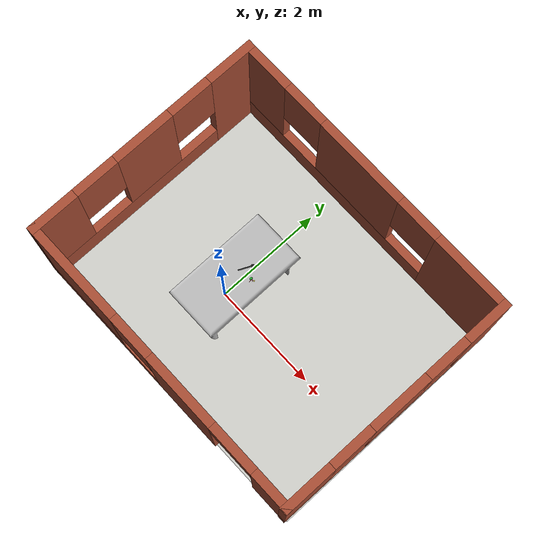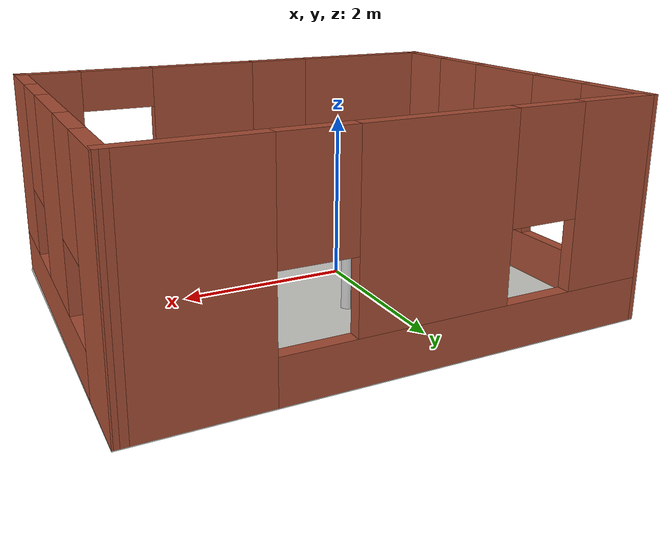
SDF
<sdf version="1.6">
 <world name="default">
  <light name="sun" type="directional">
   <cast_shadows>0</cast_shadows>
   <pose>0 0 10 0 -0 0</pose>
   <diffuse>0.5 0.5 0.5 1</diffuse>
   <specular>0.2 0.2 0.2 1</specular>
   <attenuation>
    <range>1000</range>
    <constant>0.9</constant>
    <linear>0.01</linear>
    <quadratic>0.001</quadratic>
   </attenuation>
   <direction>-0.5 0.1 -0.9</direction>
  </light>
  <gravity>0 0 -9.8</gravity>
  <magnetic_field>6e-06 2.3e-05 -4.2e-05</magnetic_field>
  <atmosphere type="adiabatic"/>
  <physics name="default_physics" default="0" type="ode">
   <max_step_size>0.001</max_step_size>
   <real_time_factor>1</real_time_factor>
   <real_time_update_rate>1000</real_time_update_rate>
  </physics>
  <scene>
   <grid>0</grid>
   <ambient>0.97 0.97 0.97 1</ambient>
   <shadows>1</shadows>
   <sky><time>17</time><clouds><speed>12</speed></clouds></sky>
  </scene>
  <model name="gazebo">
   <pose>0.602153 0.428181 0 0 -0 0</pose>
   <link name="Wall_12">
    <pose>-0.009011 2.18619 0 0 -0 3.14159</pose>
    <visual name="Wall_12_Visual_0">
     <pose>-2.14223 0 1.25 0 -0 0</pose>
     <geometry><box><size>1.46553 0.15 2.5</size></box></geometry>
     <material>
      <script><uri>file://media/materials/scripts/gazebo.material</uri><name>Gazebo/Bricks</name></script>
      <ambient>1 0.764706 0.305882 1</ambient>
     </material>
     <meta><layer>0</layer></meta>
    </visual>
    <collision name="Wall_12_Collision_0">
     <geometry><box><size>1.46553 0.15 2.5</size></box></geometry>
     <pose>-2.14223 0 1.25 0 -0 0</pose>
    </collision>
    <visual name="Wall_12_Visual_1">
     <pose>0.732765 0 0.25 0 -0 0</pose>
     <geometry><box><size>4.28447 0.15 0.5</size></box></geometry>
     <material>
      <script><uri>file://media/materials/scripts/gazebo.material</uri><name>Gazebo/Bricks</name></script>
      <ambient>1 0.764706 0.305882 1</ambient>
     </material>
     <meta><layer>0</layer></meta>
    </visual>
    <collision name="Wall_12_Collision_1">
     <geometry><box><size>4.28447 0.15 0.5</size></box></geometry>
     <pose>0.732765 0 0.25 0 -0 0</pose>
    </collision>
    <visual name="Wall_12_Visual_2">
     <pose>0.241069 0 1.5 0 -0 0</pose>
     <geometry><box><size>1.70108 0.15 2</size></box></geometry>
     <material>
      <script><uri>file://media/materials/scripts/gazebo.material</uri><name>Gazebo/Bricks</name></script>
      <ambient>1 0.764706 0.305882 1</ambient>
     </material>
     <meta><layer>0</layer></meta>
    </visual>
    <collision name="Wall_12_Collision_2">
     <geometry><box><size>1.70108 0.15 2</size></box></geometry>
     <pose>0.241069 0 1.5 0 -0 0</pose>
    </collision>
    <visual name="Wall_12_Visual_3">
     <pose>2.3833 0 1.5 0 -0 0</pose>
     <geometry><box><size>0.983392 0.15 2</size></box></geometry>
     <material>
      <script><uri>file://media/materials/scripts/gazebo.material</uri><name>Gazebo/Bricks</name></script>
      <ambient>1 0.764706 0.305882 1</ambient>
     </material>
     <meta><layer>0</layer></meta>
    </visual>
    <collision name="Wall_12_Collision_3">
     <geometry><box><size>0.983392 0.15 2</size></box></geometry>
     <pose>2.3833 0 1.5 0 -0 0</pose>
    </collision>
    <visual name="Wall_12_Visual_4">
     <pose>-1.00947 0 1.9 0 -0 0</pose>
     <geometry><box><size>0.8 0.15 1.2</size></box></geometry>
     <material>
      <script><uri>file://media/materials/scripts/gazebo.material</uri><name>Gazebo/Bricks</name></script>
      <ambient>1 0.764706 0.305882 1</ambient>
     </material>
     <meta><layer>0</layer></meta>
    </visual>
    <collision name="Wall_12_Collision_4">
     <geometry><box><size>0.8 0.15 1.2</size></box></geometry>
     <pose>-1.00947 0 1.9 0 -0 0</pose>
    </collision>
    <visual name="Wall_12_Visual_5">
     <pose>1.49161 0 1.9 0 -0 0</pose>
     <geometry><box><size>0.8 0.15 1.2</size></box></geometry>
     <material>
      <script><uri>file://media/materials/scripts/gazebo.material</uri><name>Gazebo/Bricks</name></script>
      <ambient>1 0.764706 0.305882 1</ambient>
     </material>
     <meta><layer>0</layer></meta>
    </visual>
    <collision name="Wall_12_Collision_5">
     <geometry><box><size>0.8 0.15 1.2</size></box></geometry>
     <pose>1.49161 0 1.9 0 -0 0</pose>
    </collision>
   </link>
   <link name="Wall_14">
    <pose>2.80026 -0.006448 0 0 -0 -1.57455</pose>
    <visual name="Wall_14_Visual_0">
     <pose>-1.84302 0 1.25 0 -0 0</pose>
     <geometry><box><size>0.849283 0.15 2.5</size></box></geometry>
     <material>
      <script><uri>file://media/materials/scripts/gazebo.material</uri><name>Gazebo/Bricks</name></script>
      <ambient>1 0.764706 0.305882 1</ambient>
     </material>
     <meta><layer>0</layer></meta>
    </visual>
    <collision name="Wall_14_Collision_0">
     <geometry><box><size>0.849283 0.15 2.5</size></box></geometry>
     <pose>-1.84302 0 1.25 0 -0 0</pose>
    </collision>
    <visual name="Wall_14_Visual_1">
     <pose>0.424641 0 0.25 0 -0 0</pose>
     <geometry><box><size>3.68603 0.15 0.5</size></box></geometry>
     <material>
      <script><uri>file://media/materials/scripts/gazebo.material</uri><name>Gazebo/Bricks</name></script>
      <ambient>1 0.764706 0.305882 1</ambient>
     </material>
     <meta><layer>0</layer></meta>
    </visual>
    <collision name="Wall_14_Collision_1">
     <geometry><box><size>3.68603 0.15 0.5</size></box></geometry>
     <pose>0.424641 0 0.25 0 -0 0</pose>
    </collision>
    <visual name="Wall_14_Visual_2">
     <pose>-0.057429 0 1.5 0 -0 0</pose>
     <geometry><box><size>1.12189 0.15 2</size></box></geometry>
     <material>
      <script><uri>file://media/materials/scripts/gazebo.material</uri><name>Gazebo/Bricks</name></script>
      <ambient>1 0.764706 0.305882 1</ambient>
     </material>
     <meta><layer>0</layer></meta>
    </visual>
    <collision name="Wall_14_Collision_2">
     <geometry><box><size>1.12189 0.15 2</size></box></geometry>
     <pose>-0.057429 0 1.5 0 -0 0</pose>
    </collision>
    <visual name="Wall_14_Visual_3">
     <pose>1.78559 0 1.5 0 -0 0</pose>
     <geometry><box><size>0.964141 0.15 2</size></box></geometry>
     <material>
      <script><uri>file://media/materials/scripts/gazebo.material</uri><name>Gazebo/Bricks</name></script>
      <ambient>1 0.764706 0.305882 1</ambient>
     </material>
     <meta><layer>0</layer></meta>
    </visual>
    <collision name="Wall_14_Collision_3">
     <geometry><box><size>0.964141 0.15 2</size></box></geometry>
     <pose>1.78559 0 1.5 0 -0 0</pose>
    </collision>
    <visual name="Wall_14_Visual_4">
     <pose>-1.01837 0 1.9 0 -0 0</pose>
     <geometry><box><size>0.8 0.15 1.2</size></box></geometry>
     <material>
      <script><uri>file://media/materials/scripts/gazebo.material</uri><name>Gazebo/Bricks</name></script>
      <ambient>1 0.764706 0.305882 1</ambient>
     </material>
     <meta><layer>0</layer></meta>
    </visual>
    <collision name="Wall_14_Collision_4">
     <geometry><box><size>0.8 0.15 1.2</size></box></geometry>
     <pose>-1.01837 0 1.9 0 -0 0</pose>
    </collision>
    <visual name="Wall_14_Visual_5">
     <pose>0.903516 0 1.9 0 -0 0</pose>
     <geometry><box><size>0.8 0.15 1.2</size></box></geometry>
     <material>
      <script><uri>file://media/materials/scripts/gazebo.material</uri><name>Gazebo/Bricks</name></script>
      <ambient>1 0.764706 0.305882 1</ambient>
     </material>
     <meta><layer>0</layer></meta>
    </visual>
    <collision name="Wall_14_Collision_5">
     <geometry><box><size>0.8 0.15 1.2</size></box></geometry>
     <pose>0.903516 0 1.9 0 -0 0</pose>
    </collision>
   </link>
   <link name="Wall_17">
    <pose>-0.010862 -2.18782 0 0 -0 3.14159</pose>
    <visual name="Wall_17_Visual_0">
     <pose>-2.49006 0 1.25 0 -0 0</pose>
     <geometry><box><size>0.769881 0.15 2.5</size></box></geometry>
     <material>
      <script><uri>file://media/materials/scripts/gazebo.material</uri><name>Gazebo/Bricks</name></script>
      <ambient>1 0.764706 0.305882 1</ambient>
     </material>
     <meta><layer>0</layer></meta>
    </visual>
    <collision name="Wall_17_Collision_0">
     <geometry><box><size>0.769881 0.15 2.5</size></box></geometry>
     <pose>-2.49006 0 1.25 0 -0 0</pose>
    </collision>
    <visual name="Wall_17_Visual_1">
     <pose>-0.51585 0 1.25 0 -0 0</pose>
     <geometry><box><size>1.37854 0.15 2.5</size></box></geometry>
     <material>
      <script><uri>file://media/materials/scripts/gazebo.material</uri><name>Gazebo/Bricks</name></script>
      <ambient>1 0.764706 0.305882 1</ambient>
     </material>
     <meta><layer>0</layer></meta>
    </visual>
    <collision name="Wall_17_Collision_1">
     <geometry><box><size>1.37854 0.15 2.5</size></box></geometry>
     <pose>-0.51585 0 1.25 0 -0 0</pose>
    </collision>
    <visual name="Wall_17_Visual_2">
     <pose>1.52421 0 0.25 0 -0 0</pose>
     <geometry><box><size>2.70158 0.15 0.5</size></box></geometry>
     <material>
      <script><uri>file://media/materials/scripts/gazebo.material</uri><name>Gazebo/Bricks</name></script>
      <ambient>1 0.764706 0.305882 1</ambient>
     </material>
     <meta><layer>0</layer></meta>
    </visual>
    <collision name="Wall_17_Collision_2">
     <geometry><box><size>2.70158 0.15 0.5</size></box></geometry>
     <pose>1.52421 0 0.25 0 -0 0</pose>
    </collision>
    <visual name="Wall_17_Visual_3">
     <pose>1.92421 0 1.5 0 -0 0</pose>
     <geometry><box><size>1.90158 0.15 2</size></box></geometry>
     <material>
      <script><uri>file://media/materials/scripts/gazebo.material</uri><name>Gazebo/Bricks</name></script>
      <ambient>1 0.764706 0.305882 1</ambient>
     </material>
     <meta><layer>0</layer></meta>
    </visual>
    <collision name="Wall_17_Collision_3">
     <geometry><box><size>1.90158 0.15 2</size></box></geometry>
     <pose>1.92421 0 1.5 0 -0 0</pose>
    </collision>
    <visual name="Wall_17_Visual_4">
     <pose>0.573419 0 1.9 0 -0 0</pose>
     <geometry><box><size>0.8 0.15 1.2</size></box></geometry>
     <material>
      <script><uri>file://media/materials/scripts/gazebo.material</uri><name>Gazebo/Bricks</name></script>
      <ambient>1 0.764706 0.305882 1</ambient>
     </material>
     <meta><layer>0</layer></meta>
    </visual>
    <collision name="Wall_17_Collision_4">
     <geometry><box><size>0.8 0.15 1.2</size></box></geometry>
     <pose>0.573419 0 1.9 0 -0 0</pose>
    </collision>
    <visual name="Wall_17_Visual_5">
     <pose>-1.65512 0 2.25 0 -0 0</pose>
     <geometry><box><size>0.9 0.15 0.5</size></box></geometry>
     <material>
      <script><uri>file://media/materials/scripts/gazebo.material</uri><name>Gazebo/Bricks</name></script>
      <ambient>1 0.764706 0.305882 1</ambient>
     </material>
     <meta><layer>0</layer></meta>
    </visual>
    <collision name="Wall_17_Collision_5">
     <geometry><box><size>0.9 0.15 0.5</size></box></geometry>
     <pose>-1.65512 0 2.25 0 -0 0</pose>
    </collision>
   </link>
   <link name="Wall_21">
    <collision name="Wall_21_Collision"><geometry><box><size>5.75 4.5 0</size></box></geometry></collision>
    <visual name="Wall_21_Visual">
     <geometry><box><size>5.75 4.5 0</size></box></geometry>
     <material>
      <script><uri>file://media/materials/scripts/gazebo.material</uri><name>Gazebo/CeilingTiled</name></script>
      <ambient>1 1 1 1</ambient>
     </material>
     <meta><layer>0</layer></meta>
    </visual>
    <pose>0.010894 0.02437 0 0 -0 0</pose>
   </link>
   <link name="Wall_24">
    <pose>-2.80994 -0.000817 0 0 -0 -1.57122</pose>
    <visual name="Wall_24_Visual_0">
     <pose>-1.80168 0 1.25 0 -0 0</pose>
     <geometry><box><size>0.920654 0.15 2.5</size></box></geometry>
     <material>
      <script><uri>file://media/materials/scripts/gazebo.material</uri><name>Gazebo/Bricks</name></script>
      <ambient>1 1 1 1</ambient>
     </material>
     <meta><layer>0</layer></meta>
    </visual>
    <collision name="Wall_24_Collision_0">
     <geometry><box><size>0.920654 0.15 2.5</size></box></geometry>
     <pose>-1.80168 0 1.25 0 -0 0</pose>
    </collision>
    <visual name="Wall_24_Visual_1">
     <pose>0.460327 0 0.25 0 -0 0</pose>
     <geometry><box><size>3.60336 0.15 0.5</size></box></geometry>
     <material>
      <script><uri>file://media/materials/scripts/gazebo.material</uri><name>Gazebo/Bricks</name></script>
      <ambient>1 1 1 1</ambient>
     </material>
     <meta><layer>0</layer></meta>
    </visual>
    <collision name="Wall_24_Collision_1">
     <geometry><box><size>3.60336 0.15 0.5</size></box></geometry>
     <pose>0.460327 0 0.25 0 -0 0</pose>
    </collision>
    <visual name="Wall_24_Visual_2">
     <pose>0.014085 0 1.5 0 -0 0</pose>
     <geometry><box><size>1.11087 0.15 2</size></box></geometry>
     <material>
      <script><uri>file://media/materials/scripts/gazebo.material</uri><name>Gazebo/Bricks</name></script>
      <ambient>1 1 1 1</ambient>
     </material>
     <meta><layer>0</layer></meta>
    </visual>
    <collision name="Wall_24_Collision_2">
     <geometry><box><size>1.11087 0.15 2</size></box></geometry>
     <pose>0.014085 0 1.5 0 -0 0</pose>
    </collision>
    <visual name="Wall_24_Visual_3">
     <pose>1.81576 0 1.5 0 -0 0</pose>
     <geometry><box><size>0.892484 0.15 2</size></box></geometry>
     <material>
      <script><uri>file://media/materials/scripts/gazebo.material</uri><name>Gazebo/Bricks</name></script>
      <ambient>1 1 1 1</ambient>
     </material>
     <meta><layer>0</layer></meta>
    </visual>
    <collision name="Wall_24_Collision_3">
     <geometry><box><size>0.892484 0.15 2</size></box></geometry>
     <pose>1.81576 0 1.5 0 -0 0</pose>
    </collision>
    <visual name="Wall_24_Visual_4">
     <pose>-0.941352 0 1.9 0 -0 0</pose>
     <geometry><box><size>0.8 0.15 1.2</size></box></geometry>
     <material>
      <script><uri>file://media/materials/scripts/gazebo.material</uri><name>Gazebo/Bricks</name></script>
      <ambient>1 1 1 1</ambient>
     </material>
     <meta><layer>0</layer></meta>
    </visual>
    <collision name="Wall_24_Collision_4">
     <geometry><box><size>0.8 0.15 1.2</size></box></geometry>
     <pose>-0.941352 0 1.9 0 -0 0</pose>
    </collision>
    <visual name="Wall_24_Visual_5">
     <pose>0.969522 0 1.9 0 -0 0</pose>
     <geometry><box><size>0.8 0.15 1.2</size></box></geometry>
     <material>
      <script><uri>file://media/materials/scripts/gazebo.material</uri><name>Gazebo/Bricks</name></script>
      <ambient>1 1 1 1</ambient>
     </material>
     <meta><layer>0</layer></meta>
    </visual>
    <collision name="Wall_24_Collision_5">
     <geometry><box><size>0.8 0.15 1.2</size></box></geometry>
     <pose>0.969522 0 1.9 0 -0 0</pose>
    </collision>
   </link>
   <static>1</static>
  </model>
  <model name="table">
   <static>true</static>
   <pose>0.8 -1 0 0 0 0</pose>
   <link name="link">
    <collision name="collision">
     <geometry>
      <mesh>
       <uri>/workspace/src/world_description/world/objects/table.stl</uri>
       <scale>0.016 0.016 0.016</scale>
      </mesh>
     </geometry>
    </collision>
    <visual name="visual">
     <geometry>
      <mesh>
       <uri>/workspace/src/world_description/world/objects/table.stl</uri>
       <scale>0.016 0.016 0.016</scale>
      </mesh>
     </geometry>
     <material>
      <script>
       <uri>/workspace/src/world_description/world/materials/scripts</uri>
       <uri>/workspace/src/world_description/world/materials/textures</uri>
       <name>Table/Marble_Lightmap</name>
      </script>
     </material>
    </visual>
   </link>
  </model>
  <model name="candy1">
   <pose>0.283069 0.329710 1.011942 -1.542624 -0.112146 -0.016052</pose>
   <inertial name="inertial"><mass>0.001</mass></inertial>
   <link name="link">
    <collision name="collision">
     <geometry>
      <mesh>
       <uri>/workspace/src/world_description/world/objects/candy1.stl</uri>
       <scale>0.002 0.002 0.002</scale>
      </mesh>
     </geometry>
    </collision>
    <visual name="visual">
     <geometry>
      <mesh>
       <uri>/workspace/src/world_description/world/objects/candy1.stl</uri>
       <scale>0.002 0.002 0.002</scale>
      </mesh>
     </geometry>
     <material>
      <script><uri>file://media/materials/scripts/gazebo.material</uri><name>Gazebo/Green</name></script>
      <diffuse>0.7 0.9 0 1</diffuse>
     </material>
    </visual>
   </link>
  </model>
  <model name="candy2">
   <pose>0.328299 0.328299 1.058662 -3.135477 -0.112146 -0.016052</pose>
   <inertial name="inertial"><mass>0.001</mass></inertial>
   <link name="link">
    <collision name="collision">
     <geometry>
      <mesh>
       <uri>/workspace/src/world_description/world/objects/candy2.stl</uri>
       <scale>0.005 0.005 0.005</scale>
      </mesh>
     </geometry>
    </collision>
    <visual name="visual">
     <geometry>
      <mesh>
       <uri>/workspace/src/world_description/world/objects/candy2.stl</uri>
       <scale>0.005 0.005 0.005</scale>
      </mesh>
     </geometry>
     <material>
      <script><uri>file://media/materials/scripts/gazebo.material</uri><name>Gazebo/Red</name></script>
      <diffuse>0.7 0.9 0 1</diffuse>
     </material>
    </visual>
   </link>
  </model>
  <model name="candy3">
   <pose>0.329830 0.359447 0.914773 -0.517868 -1.335332 -0.404596</pose>
   <inertial name="inertial"><mass>0.001</mass></inertial>
   <link name="link">
    <collision name="collision">
     <geometry>
      <mesh>
       <uri>/workspace/src/world_description/world/objects/candy3.stl</uri>
       <scale>0.003 0.003 0.003</scale>
      </mesh>
     </geometry>
    </collision>
    <visual name="visual">
     <geometry>
      <mesh>
       <uri>/workspace/src/world_description/world/objects/candy3.stl</uri>
       <scale>0.003 0.003 0.003</scale>
      </mesh>
     </geometry>
     <material>
      <script><uri>file://media/materials/scripts/gazebo.material</uri><name>Gazebo/Yellow</name></script>
      <diffuse>0.7 0.9 0 1</diffuse>
     </material>
    </visual>
   </link>
  </model>
  <model name="teaspoons">
   <pose>0.132160 0.539224 1.042092 -1.582185 0.051346 -2.021373</pose>
   <link name="link">
    <inertial name="inertial">
     <mass>0.01</mass>
     <inertia ixx="0.304456" ixy="0.644305" ixz="-0.000169" iyy="11.427076" iyz="-0.000016" izz="11.352903"/>
    </inertial>
    <collision name="collision">
     <geometry>
      <mesh>
       <uri>/workspace/src/world_description/world/objects/Long_Handle_Coffee_Scoop.stl</uri>
       <scale>0.03 0.03 0.03</scale>
      </mesh>
     </geometry>
    </collision>
    <visual name="visual">
     <geometry>
      <mesh>
       <uri>/workspace/src/world_description/world/objects/Long_Handle_Coffee_Scoop.stl</uri>
       <scale>0.03 0.03 0.03</scale>
      </mesh>
     </geometry>
     <material>
      <script><uri>file://media/materials/scripts/gazebo.material</uri><name>Gazebo/Black</name></script>
      <diffuse>0.7 0.9 0 1</diffuse>
     </material>
    </visual>
   </link>
  </model>
 </world>
</sdf>
